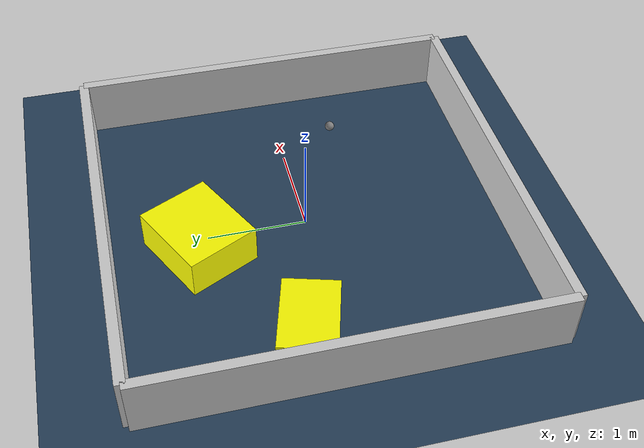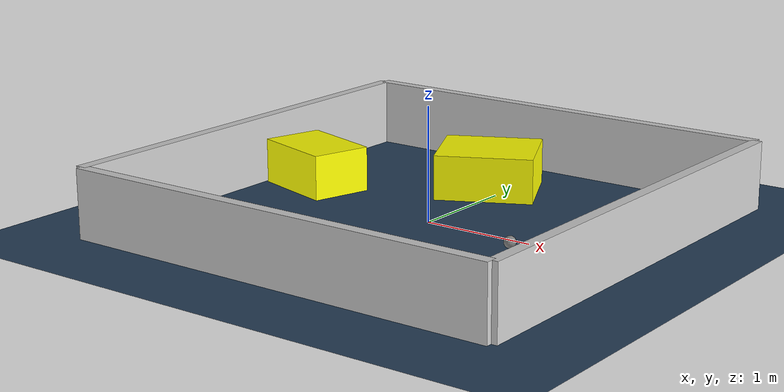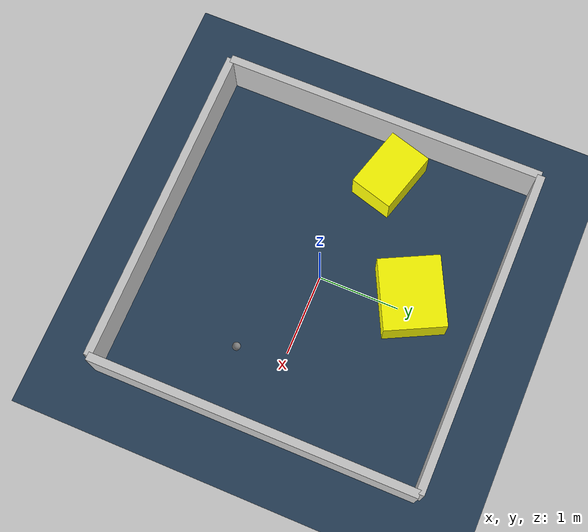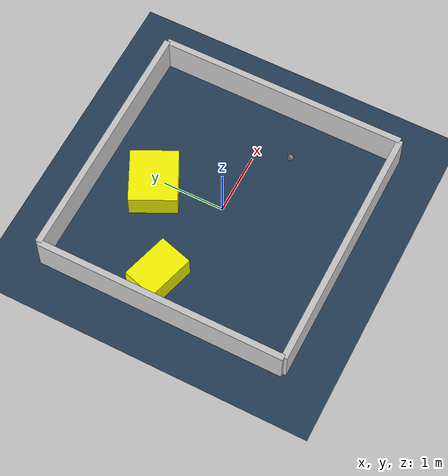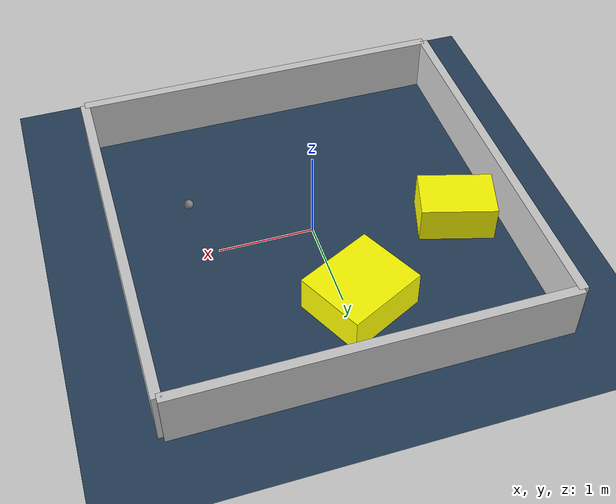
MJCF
<?xml version="1.0" ?>
<mujoco model="generated_environment">
  <option timestep="0.01" integrator="RK4" cone="elliptic"/>
  <default>
    <geom density="1"/>
  </default>
  <asset>
    <texture builtin="gradient" height="3072" rgb1="0.3 0.5 0.7" rgb2="0 0 0" type="skybox" width="512"/>
    <texture builtin="checker" height="300" mark="edge" markrgb="0.8 0.8 0.8" name="groundplane" rgb1="0.2 0.3 0.4" rgb2="0.1 0.2 0.3" type="2d" width="300"/>
    <material name="groundplane" reflectance="0.2" texrepeat="5 5" texture="groundplane" texuniform="true"/>
    <material name="robot" rgba="0.0 1.0 0.0 1"/>
  </asset>
  <worldbody>
    <light dir="0 0 -1" directional="true" pos="0 0 1.5"/>
    <geom condim="4" friction="1.0 0.005 0.001" material="groundplane" name="floor" size="0 0 0.05" type="plane"/>
    <body name="walls">
      <geom name="wall_1" condim="4" pos="-2.0 0.0 0.3" rgba="0.800000011920929 0.800000011920929 0.800000011920929 1.0" size="0.05 2.0 0.3" type="box"/>
      <geom name="wall_2" condim="4" pos="2.0 0.0 0.3" rgba="0.800000011920929 0.800000011920929 0.800000011920929 1.0" size="0.05 2.0 0.3" type="box"/>
      <geom name="wall_3" condim="4" pos="0.0 -2.0 0.3" rgba="0.800000011920929 0.800000011920929 0.800000011920929 1.0" size="2.0 0.05 0.3" type="box"/>
      <geom name="wall_4" condim="4" pos="0.0 2.0 0.3" rgba="0.800000011920929 0.800000011920929 0.800000011920929 1.0" size="2.0 0.05 0.3" type="box"/>
    </body>
    <body name="robot">
      <joint name="joint_x" type="slide" pos="0 0 0" axis="1 0 0"/>
      <joint name="joint_y" type="slide" pos="0 0 0" axis="0 1 0"/>
      <geom name="robot" type="sphere" pos="1.1882404831387325 -0.5580760363717383 0.2" size="0.05" mass="5." friction="1.0 0.005 0.0001" condim="4"/>
      <site name="sensor_ball"/>
    </body>
    <body name="obstacle_1_movable">
      <geom name="obstacle_1_movable" condim="4" pos="-1.474979715940102 0.31078272417796615 0.2" euler="0 0 343.8023033280424" friction="1.0 0.005 0.001" rgba="1 1 0 1" size="0.3925470626559293 0.2735027406753239 0.2" type="box" mass="0.1"/>
      <joint type="free"/>
    </body>
    <body name="obstacle_2_movable">
      <geom name="obstacle_2_movable" condim="4" pos="-0.1430384928302102 1.0996579077166095 0.2" euler="0 0 206.48751447250805" friction="1.0 0.005 0.001" rgba="1 1 0 1" size="0.43552333581634983 0.3757049944550696 0.2" type="box" mass="0.1"/>
      <joint type="free"/>
    </body>
  </worldbody>
  <actuator>
    <motor name="actuator_x" joint="joint_x" gear="1" ctrlrange="-1 1"/>
    <motor name="actuator_y" joint="joint_y" gear="1" ctrlrange="-1 1"/>
  </actuator>
</mujoco>
